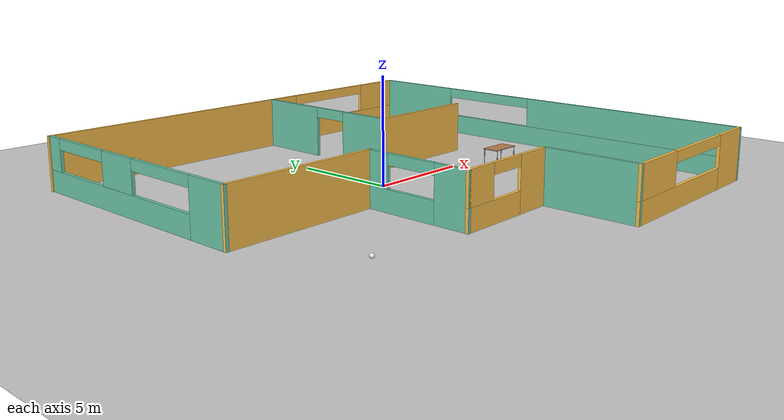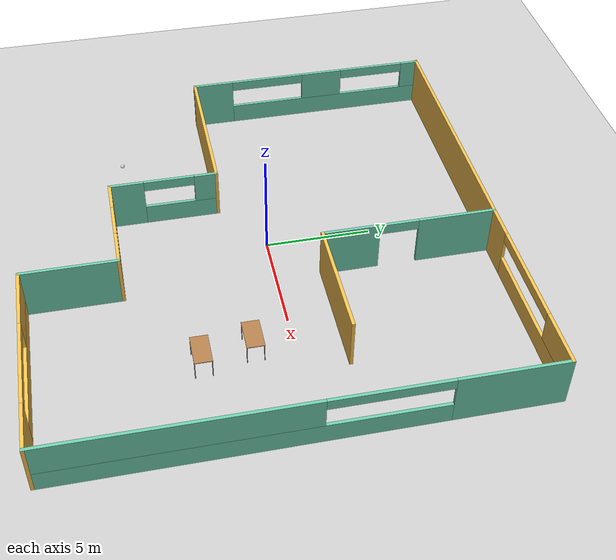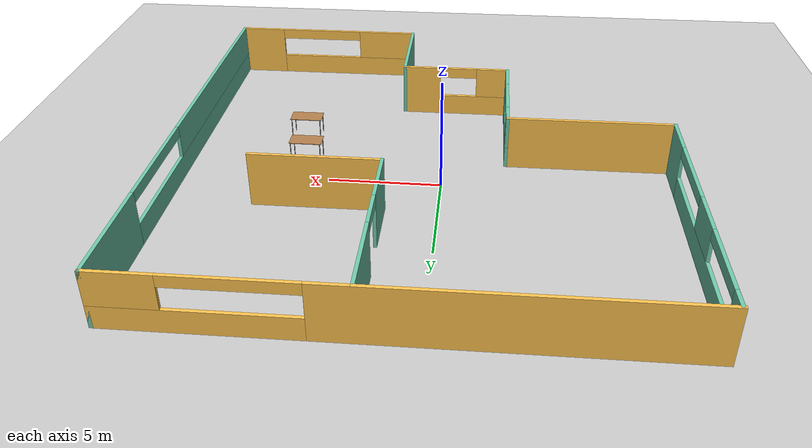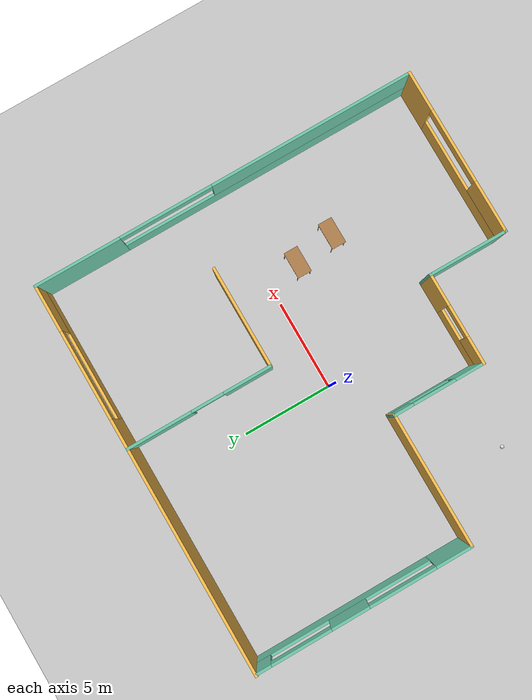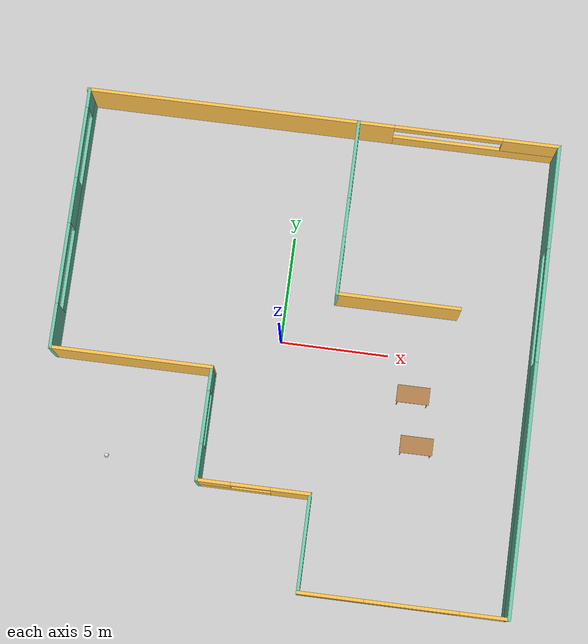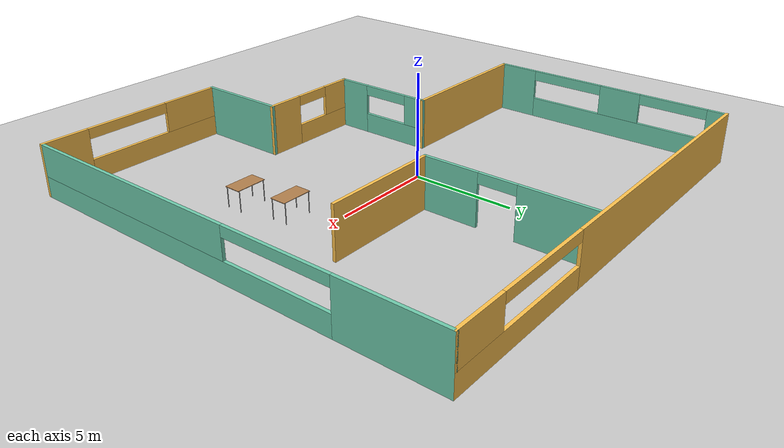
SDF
<sdf version="1.7">
 <world name="default">
  <plugin name="hello" filename="libhello.so"/>
  <light name="sun" type="directional">
   <pose>0 0 10 0 -0 0</pose>
   <diffuse>0.8 0.8 0.8 1</diffuse>
   <specular>0.2 0.2 0.2 1</specular>
   <attenuation>
    <range>1000</range>
    <constant>0.9</constant>
    <linear>0.01</linear>
    <quadratic>0.001</quadratic>
   </attenuation>
   <direction>-0.5 0.1 -0.9</direction>
   <spot><inner_angle>0</inner_angle><outer_angle>0</outer_angle><falloff>0</falloff></spot>
  </light>
  <include><uri>model://ground_plane</uri></include>
  <gravity>0 0 -9.8</gravity>
  <magnetic_field>6e-06 2.3e-05 -4.2e-05</magnetic_field>
  <atmosphere type="adiabatic"/>
  <physics type="ode">
   <max_step_size>0.001</max_step_size>
   <real_time_factor>1</real_time_factor>
   <real_time_update_rate>1000</real_time_update_rate>
  </physics>
  <scene><ambient>0.4 0.4 0.4 1</ambient><background>0.7 0.7 0.7 1</background><shadows>1</shadows></scene>
  <spherical_coordinates>
   <surface_model>EARTH_WGS84</surface_model>
   <latitude_deg>0</latitude_deg>
   <longitude_deg>0</longitude_deg>
   <elevation>0</elevation>
   <heading_deg>0</heading_deg>
  </spherical_coordinates>
  <model name="ground_floor">
   <pose>0.672639 -0.5511 0 0 -0 0</pose>
   <link name="Wall_0">
    <pose>-1e-06 10.8 0 0 -0 0</pose>
    <visual name="Wall_0_Visual_0">
     <pose>-3.85063 0 1.25 0 -0 0</pose>
     <geometry><box><size>14.2987 0.15 2.5</size></box></geometry>
     <material>
      <script><uri>file://media/materials/scripts/gazebo.material</uri><name>Gazebo/Grey</name></script>
      <ambient>1 0.764706 0.305882 1</ambient>
     </material>
     <meta><layer>0</layer></meta>
    </visual>
    <collision name="Wall_0_Collision_0">
     <geometry><box><size>14.2987 0.15 2.5</size></box></geometry>
     <pose>-3.85063 0 1.25 0 -0 0</pose>
    </collision>
    <visual name="Wall_0_Visual_1">
     <pose>7.14937 0 0.5 0 -0 0</pose>
     <geometry><box><size>7.70126 0.15 1</size></box></geometry>
     <material>
      <script><uri>file://media/materials/scripts/gazebo.material</uri><name>Gazebo/Grey</name></script>
      <ambient>1 0.764706 0.305882 1</ambient>
     </material>
     <meta><layer>0</layer></meta>
    </visual>
    <collision name="Wall_0_Collision_1">
     <geometry><box><size>7.70126 0.15 1</size></box></geometry>
     <pose>7.14937 0 0.5 0 -0 0</pose>
    </collision>
    <visual name="Wall_0_Visual_2">
     <pose>9.66137 0 1.75 0 -0 0</pose>
     <geometry><box><size>2.67726 0.15 1.5</size></box></geometry>
     <material>
      <script><uri>file://media/materials/scripts/gazebo.material</uri><name>Gazebo/Grey</name></script>
      <ambient>1 0.764706 0.305882 1</ambient>
     </material>
     <meta><layer>0</layer></meta>
    </visual>
    <collision name="Wall_0_Collision_2">
     <geometry><box><size>2.67726 0.15 1.5</size></box></geometry>
     <pose>9.66137 0 1.75 0 -0 0</pose>
    </collision>
    <visual name="Wall_0_Visual_3">
     <pose>5.81074 0 2.25 0 -0 0</pose>
     <geometry><box><size>5.024 0.15 0.5</size></box></geometry>
     <material>
      <script><uri>file://media/materials/scripts/gazebo.material</uri><name>Gazebo/Grey</name></script>
      <ambient>1 0.764706 0.305882 1</ambient>
     </material>
     <meta><layer>0</layer></meta>
    </visual>
    <collision name="Wall_0_Collision_3">
     <geometry><box><size>5.024 0.15 0.5</size></box></geometry>
     <pose>5.81074 0 2.25 0 -0 0</pose>
    </collision>
   </link>
   <link name="Wall_1">
    <pose>10.925 0 0 0 0 -1.5708</pose>
    <visual name="Wall_1_Visual_0">
     <pose>-8.42693 0 1.25 0 -0 0</pose>
     <geometry><box><size>4.89614 0.15 2.5</size></box></geometry>
     <material>
      <script><uri>file://media/materials/scripts/gazebo.material</uri><name>Gazebo/Grey</name></script>
      <ambient>0.435294 0.796078 0.67451 1</ambient>
     </material>
     <meta><layer>0</layer></meta>
    </visual>
    <collision name="Wall_1_Collision_0">
     <geometry><box><size>4.89614 0.15 2.5</size></box></geometry>
     <pose>-8.42693 0 1.25 0 -0 0</pose>
    </collision>
    <visual name="Wall_1_Visual_1">
     <pose>2.44807 0 0.5 0 -0 0</pose>
     <geometry><box><size>16.8539 0.15 1</size></box></geometry>
     <material>
      <script><uri>file://media/materials/scripts/gazebo.material</uri><name>Gazebo/Grey</name></script>
      <ambient>0.435294 0.796078 0.67451 1</ambient>
     </material>
     <meta><layer>0</layer></meta>
    </visual>
    <collision name="Wall_1_Collision_1">
     <geometry><box><size>16.8539 0.15 1</size></box></geometry>
     <pose>2.44807 0 0.5 0 -0 0</pose>
    </collision>
    <visual name="Wall_1_Visual_2">
     <pose>5.08057 0 1.75 0 -0 0</pose>
     <geometry><box><size>11.5889 0.15 1.5</size></box></geometry>
     <material>
      <script><uri>file://media/materials/scripts/gazebo.material</uri><name>Gazebo/Grey</name></script>
      <ambient>0.435294 0.796078 0.67451 1</ambient>
     </material>
     <meta><layer>0</layer></meta>
    </visual>
    <collision name="Wall_1_Collision_2">
     <geometry><box><size>11.5889 0.15 1.5</size></box></geometry>
     <pose>5.08057 0 1.75 0 -0 0</pose>
    </collision>
    <visual name="Wall_1_Visual_3">
     <pose>-3.34636 0 2.25 0 -0 0</pose>
     <geometry><box><size>5.265 0.15 0.5</size></box></geometry>
     <material>
      <script><uri>file://media/materials/scripts/gazebo.material</uri><name>Gazebo/Grey</name></script>
      <ambient>0.435294 0.796078 0.67451 1</ambient>
     </material>
     <meta><layer>0</layer></meta>
    </visual>
    <collision name="Wall_1_Collision_3">
     <geometry><box><size>5.265 0.15 0.5</size></box></geometry>
     <pose>-3.34636 0 2.25 0 -0 0</pose>
    </collision>
   </link>
   <link name="Wall_10">
    <collision name="Wall_10_Collision">
     <geometry><box><size>5.75 0.15 2.5</size></box></geometry>
     <pose>0 0 1.25 0 -0 0</pose>
    </collision>
    <visual name="Wall_10_Visual">
     <pose>0 0 1.25 0 -0 0</pose>
     <geometry><box><size>5.75 0.15 2.5</size></box></geometry>
     <material>
      <script><uri>file://media/materials/scripts/gazebo.material</uri><name>Gazebo/Grey</name></script>
      <ambient>1 0.764706 0.305882 1</ambient>
     </material>
     <meta><layer>0</layer></meta>
    </visual>
    <pose>4.43646 2.7 0 0 -0 0</pose>
   </link>
   <link name="Wall_2">
    <pose>6.25 -10.8 0 0 -0 3.14159</pose>
    <visual name="Wall_2_Visual_0">
     <pose>-3.60608 0 1.25 0 -0 0</pose>
     <geometry><box><size>2.28785 0.15 2.5</size></box></geometry>
     <material>
      <script><uri>file://media/materials/scripts/gazebo.material</uri><name>Gazebo/Grey</name></script>
      <ambient>1 0.764706 0.305882 1</ambient>
     </material>
     <meta><layer>0</layer></meta>
    </visual>
    <collision name="Wall_2_Collision_0">
     <geometry><box><size>2.28785 0.15 2.5</size></box></geometry>
     <pose>-3.60608 0 1.25 0 -0 0</pose>
    </collision>
    <visual name="Wall_2_Visual_1">
     <pose>1.14393 0 0.5 0 -0 0</pose>
     <geometry><box><size>7.21215 0.15 1</size></box></geometry>
     <material>
      <script><uri>file://media/materials/scripts/gazebo.material</uri><name>Gazebo/Grey</name></script>
      <ambient>1 0.764706 0.305882 1</ambient>
     </material>
     <meta><layer>0</layer></meta>
    </visual>
    <collision name="Wall_2_Collision_1">
     <geometry><box><size>7.21215 0.15 1</size></box></geometry>
     <pose>1.14393 0 0.5 0 -0 0</pose>
    </collision>
    <visual name="Wall_2_Visual_2">
     <pose>3.24993 0 1.75 0 -0 0</pose>
     <geometry><box><size>3.00015 0.15 1.5</size></box></geometry>
     <material>
      <script><uri>file://media/materials/scripts/gazebo.material</uri><name>Gazebo/Grey</name></script>
      <ambient>1 0.764706 0.305882 1</ambient>
     </material>
     <meta><layer>0</layer></meta>
    </visual>
    <collision name="Wall_2_Collision_2">
     <geometry><box><size>3.00015 0.15 1.5</size></box></geometry>
     <pose>3.24993 0 1.75 0 -0 0</pose>
    </collision>
    <visual name="Wall_2_Visual_3">
     <pose>-0.35615 0 2.25 0 -0 0</pose>
     <geometry><box><size>4.212 0.15 0.5</size></box></geometry>
     <material>
      <script><uri>file://media/materials/scripts/gazebo.material</uri><name>Gazebo/Grey</name></script>
      <ambient>1 0.764706 0.305882 1</ambient>
     </material>
     <meta><layer>0</layer></meta>
    </visual>
    <collision name="Wall_2_Collision_3">
     <geometry><box><size>4.212 0.15 0.5</size></box></geometry>
     <pose>-0.35615 0 2.25 0 -0 0</pose>
    </collision>
   </link>
   <link name="Wall_3">
    <collision name="Wall_3_Collision">
     <geometry><box><size>4.5 0.15 2.5</size></box></geometry>
     <pose>0 0 1.25 0 -0 0</pose>
    </collision>
    <visual name="Wall_3_Visual">
     <pose>0 0 1.25 0 -0 0</pose>
     <geometry><box><size>4.5 0.15 2.5</size></box></geometry>
     <material>
      <script><uri>file://media/materials/scripts/gazebo.material</uri><name>Gazebo/Grey</name></script>
      <ambient>0.435294 0.796078 0.67451 1</ambient>
     </material>
     <meta><layer>0</layer></meta>
    </visual>
    <pose>1.575 -8.625 0 0 -0 1.5708</pose>
   </link>
   <link name="Wall_4">
    <pose>-0.975001 -6.45 0 0 -0 3.14159</pose>
    <visual name="Wall_4_Visual_0">
     <pose>-1.69584 0 1.25 0 -0 0</pose>
     <geometry><box><size>1.85833 0.15 2.5</size></box></geometry>
     <material>
      <script><uri>file://media/materials/scripts/gazebo.material</uri><name>Gazebo/Grey</name></script>
      <ambient>1 0.764706 0.305882 1</ambient>
     </material>
     <meta><layer>0</layer></meta>
    </visual>
    <collision name="Wall_4_Collision_0">
     <geometry><box><size>1.85833 0.15 2.5</size></box></geometry>
     <pose>-1.69584 0 1.25 0 -0 0</pose>
    </collision>
    <visual name="Wall_4_Visual_1">
     <pose>0.929163 0 0.5 0 -0 0</pose>
     <geometry><box><size>3.39167 0.15 1</size></box></geometry>
     <material>
      <script><uri>file://media/materials/scripts/gazebo.material</uri><name>Gazebo/Grey</name></script>
      <ambient>1 0.764706 0.305882 1</ambient>
     </material>
     <meta><layer>0</layer></meta>
    </visual>
    <collision name="Wall_4_Collision_1">
     <geometry><box><size>3.39167 0.15 1</size></box></geometry>
     <pose>0.929163 0 0.5 0 -0 0</pose>
    </collision>
    <visual name="Wall_4_Visual_2">
     <pose>1.82916 0 1.75 0 -0 0</pose>
     <geometry><box><size>1.59167 0.15 1.5</size></box></geometry>
     <material>
      <script><uri>file://media/materials/scripts/gazebo.material</uri><name>Gazebo/Grey</name></script>
      <ambient>1 0.764706 0.305882 1</ambient>
     </material>
     <meta><layer>0</layer></meta>
    </visual>
    <collision name="Wall_4_Collision_2">
     <geometry><box><size>1.59167 0.15 1.5</size></box></geometry>
     <pose>1.82916 0 1.75 0 -0 0</pose>
    </collision>
    <visual name="Wall_4_Visual_3">
     <pose>0.133326 0 2.25 0 -0 0</pose>
     <geometry><box><size>1.8 0.15 0.5</size></box></geometry>
     <material>
      <script><uri>file://media/materials/scripts/gazebo.material</uri><name>Gazebo/Grey</name></script>
      <ambient>1 0.764706 0.305882 1</ambient>
     </material>
     <meta><layer>0</layer></meta>
    </visual>
    <collision name="Wall_4_Collision_3">
     <geometry><box><size>1.8 0.15 0.5</size></box></geometry>
     <pose>0.133326 0 2.25 0 -0 0</pose>
    </collision>
   </link>
   <link name="Wall_5">
    <pose>-3.525 -3.9 0 0 -0 1.5708</pose>
    <visual name="Wall_5_Visual_0">
     <pose>-1.78127 0 1.25 0 -0 0</pose>
     <geometry><box><size>1.68745 0.15 2.5</size></box></geometry>
     <material>
      <script><uri>file://media/materials/scripts/gazebo.material</uri><name>Gazebo/Grey</name></script>
      <ambient>0.435294 0.796078 0.67451 1</ambient>
     </material>
     <meta><layer>0</layer></meta>
    </visual>
    <collision name="Wall_5_Collision_0">
     <geometry><box><size>1.68745 0.15 2.5</size></box></geometry>
     <pose>-1.78127 0 1.25 0 -0 0</pose>
    </collision>
    <visual name="Wall_5_Visual_1">
     <pose>0.843725 0 0.5 0 -0 0</pose>
     <geometry><box><size>3.56255 0.15 1</size></box></geometry>
     <material>
      <script><uri>file://media/materials/scripts/gazebo.material</uri><name>Gazebo/Grey</name></script>
      <ambient>0.435294 0.796078 0.67451 1</ambient>
     </material>
     <meta><layer>0</layer></meta>
    </visual>
    <collision name="Wall_5_Collision_1">
     <geometry><box><size>3.56255 0.15 1</size></box></geometry>
     <pose>0.843725 0 0.5 0 -0 0</pose>
    </collision>
    <visual name="Wall_5_Visual_2">
     <pose>2.04822 0 1.75 0 -0 0</pose>
     <geometry><box><size>1.15355 0.15 1.5</size></box></geometry>
     <material>
      <script><uri>file://media/materials/scripts/gazebo.material</uri><name>Gazebo/Grey</name></script>
      <ambient>0.435294 0.796078 0.67451 1</ambient>
     </material>
     <meta><layer>0</layer></meta>
    </visual>
    <collision name="Wall_5_Collision_2">
     <geometry><box><size>1.15355 0.15 1.5</size></box></geometry>
     <pose>2.04822 0 1.75 0 -0 0</pose>
    </collision>
    <visual name="Wall_5_Visual_3">
     <pose>0.266949 0 2.25 0 -0 0</pose>
     <geometry><box><size>2.409 0.15 0.5</size></box></geometry>
     <material>
      <script><uri>file://media/materials/scripts/gazebo.material</uri><name>Gazebo/Grey</name></script>
      <ambient>0.435294 0.796078 0.67451 1</ambient>
     </material>
     <meta><layer>0</layer></meta>
    </visual>
    <collision name="Wall_5_Collision_3">
     <geometry><box><size>2.409 0.15 0.5</size></box></geometry>
     <pose>0.266949 0 2.25 0 -0 0</pose>
    </collision>
   </link>
   <link name="Wall_6">
    <collision name="Wall_6_Collision">
     <geometry><box><size>7.5 0.15 2.5</size></box></geometry>
     <pose>0 0 1.25 0 -0 0</pose>
    </collision>
    <visual name="Wall_6_Visual">
     <pose>0 0 1.25 0 -0 0</pose>
     <geometry><box><size>7.5 0.15 2.5</size></box></geometry>
     <material>
      <script><uri>file://media/materials/scripts/gazebo.material</uri><name>Gazebo/Grey</name></script>
      <ambient>1 0.764706 0.305882 1</ambient>
     </material>
     <meta><layer>0</layer></meta>
    </visual>
    <pose>-7.2 -1.35 0 0 -0 3.14159</pose>
   </link>
   <link name="Wall_7">
    <pose>-10.875 4.7 0 0 -0 1.5708</pose>
    <visual name="Wall_7_Visual_0">
     <pose>-5.08309 0 1.25 0 -0 0</pose>
     <geometry><box><size>2.08381 0.15 2.5</size></box></geometry>
     <material>
      <script><uri>file://media/materials/scripts/gazebo.material</uri><name>Gazebo/Grey</name></script>
      <ambient>0.435294 0.796078 0.67451 1</ambient>
     </material>
     <meta><layer>0</layer></meta>
    </visual>
    <collision name="Wall_7_Collision_0">
     <geometry><box><size>2.08381 0.15 2.5</size></box></geometry>
     <pose>-5.08309 0 1.25 0 -0 0</pose>
    </collision>
    <visual name="Wall_7_Visual_1">
     <pose>1.04191 0 0.5 0 -0 0</pose>
     <geometry><box><size>10.1662 0.15 1</size></box></geometry>
     <material>
      <script><uri>file://media/materials/scripts/gazebo.material</uri><name>Gazebo/Grey</name></script>
      <ambient>0.435294 0.796078 0.67451 1</ambient>
     </material>
     <meta><layer>0</layer></meta>
    </visual>
    <collision name="Wall_7_Collision_1">
     <geometry><box><size>10.1662 0.15 1</size></box></geometry>
     <pose>1.04191 0 0.5 0 -0 0</pose>
    </collision>
    <visual name="Wall_7_Visual_2">
     <pose>0.7888 0 1.75 0 -0 0</pose>
     <geometry><box><size>2.13598 0.15 1.5</size></box></geometry>
     <material>
      <script><uri>file://media/materials/scripts/gazebo.material</uri><name>Gazebo/Grey</name></script>
      <ambient>0.435294 0.796078 0.67451 1</ambient>
     </material>
     <meta><layer>0</layer></meta>
    </visual>
    <collision name="Wall_7_Collision_2">
     <geometry><box><size>2.13598 0.15 1.5</size></box></geometry>
     <pose>0.7888 0 1.75 0 -0 0</pose>
    </collision>
    <visual name="Wall_7_Visual_3">
     <pose>5.67389 0 1.75 0 -0 0</pose>
     <geometry><box><size>0.902212 0.15 1.5</size></box></geometry>
     <material>
      <script><uri>file://media/materials/scripts/gazebo.material</uri><name>Gazebo/Grey</name></script>
      <ambient>0.435294 0.796078 0.67451 1</ambient>
     </material>
     <meta><layer>0</layer></meta>
    </visual>
    <collision name="Wall_7_Collision_3">
     <geometry><box><size>0.902212 0.15 1.5</size></box></geometry>
     <pose>5.67389 0 1.75 0 -0 0</pose>
    </collision>
    <visual name="Wall_7_Visual_4">
     <pose>-2.16019 0 2.25 0 -0 0</pose>
     <geometry><box><size>3.762 0.15 0.5</size></box></geometry>
     <material>
      <script><uri>file://media/materials/scripts/gazebo.material</uri><name>Gazebo/Grey</name></script>
      <ambient>0.435294 0.796078 0.67451 1</ambient>
     </material>
     <meta><layer>0</layer></meta>
    </visual>
    <collision name="Wall_7_Collision_4">
     <geometry><box><size>3.762 0.15 0.5</size></box></geometry>
     <pose>-2.16019 0 2.25 0 -0 0</pose>
    </collision>
    <visual name="Wall_7_Visual_5">
     <pose>3.53979 0 2.25 0 -0 0</pose>
     <geometry><box><size>3.366 0.15 0.5</size></box></geometry>
     <material>
      <script><uri>file://media/materials/scripts/gazebo.material</uri><name>Gazebo/Grey</name></script>
      <ambient>0.435294 0.796078 0.67451 1</ambient>
     </material>
     <meta><layer>0</layer></meta>
    </visual>
    <collision name="Wall_7_Collision_5">
     <geometry><box><size>3.366 0.15 0.5</size></box></geometry>
     <pose>3.53979 0 2.25 0 -0 0</pose>
    </collision>
   </link>
   <link name="Wall_9">
    <pose>1.63646 6.75 0 0 0 -1.5708</pose>
    <visual name="Wall_9_Visual_0">
     <pose>-2.28522 0 1.25 0 -0 0</pose>
     <geometry><box><size>3.67956 0.15 2.5</size></box></geometry>
     <material>
      <script><uri>file://media/materials/scripts/gazebo.material</uri><name>Gazebo/Grey</name></script>
      <ambient>0.435294 0.796078 0.67451 1</ambient>
     </material>
     <meta><layer>0</layer></meta>
    </visual>
    <collision name="Wall_9_Collision_0">
     <geometry><box><size>3.67956 0.15 2.5</size></box></geometry>
     <pose>-2.28522 0 1.25 0 -0 0</pose>
    </collision>
    <visual name="Wall_9_Visual_1">
     <pose>2.75228 0 1.25 0 -0 0</pose>
     <geometry><box><size>2.74544 0.15 2.5</size></box></geometry>
     <material>
      <script><uri>file://media/materials/scripts/gazebo.material</uri><name>Gazebo/Grey</name></script>
      <ambient>0.435294 0.796078 0.67451 1</ambient>
     </material>
     <meta><layer>0</layer></meta>
    </visual>
    <collision name="Wall_9_Collision_1">
     <geometry><box><size>2.74544 0.15 2.5</size></box></geometry>
     <pose>2.75228 0 1.25 0 -0 0</pose>
    </collision>
    <visual name="Wall_9_Visual_2">
     <pose>0.46706 0 2.25 0 -0 0</pose>
     <geometry><box><size>1.825 0.15 0.5</size></box></geometry>
     <material>
      <script><uri>file://media/materials/scripts/gazebo.material</uri><name>Gazebo/Grey</name></script>
      <ambient>0.435294 0.796078 0.67451 1</ambient>
     </material>
     <meta><layer>0</layer></meta>
    </visual>
    <collision name="Wall_9_Collision_2">
     <geometry><box><size>1.825 0.15 0.5</size></box></geometry>
     <pose>0.46706 0 2.25 0 -0 0</pose>
    </collision>
   </link>
   <static>1</static>
  </model>
  <model name="table">
   <static>1</static>
   <link name="link">
    <collision name="surface">
     <pose>0 0 1 0 -0 0</pose>
     <geometry><box><size>1.5 0.8 0.03</size></box></geometry>
     <surface><friction><ode><mu>0.6</mu><mu2>0.6</mu2></ode></friction></surface>
    </collision>
    <visual name="visual1">
     <pose>0 0 1 0 -0 0</pose>
     <geometry><box><size>1.5 0.8 0.03</size></box></geometry>
     <material>
      <script><uri>file://media/materials/scripts/gazebo.material</uri><name>Gazebo/Wood</name></script>
     </material>
    </visual>
    <collision name="front_left_leg">
     <pose>0.68 0.38 0.5 0 -0 0</pose>
     <geometry><cylinder><radius>0.02</radius><length>1</length></cylinder></geometry>
    </collision>
    <visual name="front_left_leg">
     <pose>0.68 0.38 0.5 0 -0 0</pose>
     <geometry><cylinder><radius>0.02</radius><length>1</length></cylinder></geometry>
     <material>
      <script><uri>file://media/materials/scripts/gazebo.material</uri><name>Gazebo/Grey</name></script>
     </material>
    </visual>
    <collision name="front_right_leg">
     <pose>0.68 -0.38 0.5 0 -0 0</pose>
     <geometry><cylinder><radius>0.02</radius><length>1</length></cylinder></geometry>
    </collision>
    <visual name="front_right_leg">
     <pose>0.68 -0.38 0.5 0 -0 0</pose>
     <geometry><cylinder><radius>0.02</radius><length>1</length></cylinder></geometry>
     <material>
      <script><uri>file://media/materials/scripts/gazebo.material</uri><name>Gazebo/Grey</name></script>
     </material>
    </visual>
    <collision name="back_right_leg">
     <pose>-0.68 -0.38 0.5 0 -0 0</pose>
     <geometry><cylinder><radius>0.02</radius><length>1</length></cylinder></geometry>
    </collision>
    <visual name="back_right_leg">
     <pose>-0.68 -0.38 0.5 0 -0 0</pose>
     <geometry><cylinder><radius>0.02</radius><length>1</length></cylinder></geometry>
     <material>
      <script><uri>file://media/materials/scripts/gazebo.material</uri><name>Gazebo/Grey</name></script>
     </material>
    </visual>
    <collision name="back_left_leg">
     <pose>-0.68 0.38 0.5 0 -0 0</pose>
     <geometry><cylinder><radius>0.02</radius><length>1</length></cylinder></geometry>
    </collision>
    <visual name="back_left_leg">
     <pose>-0.68 0.38 0.5 0 -0 0</pose>
     <geometry><cylinder><radius>0.02</radius><length>1</length></cylinder></geometry>
     <material>
      <script><uri>file://media/materials/scripts/gazebo.material</uri><name>Gazebo/Grey</name></script>
     </material>
    </visual>
   </link>
   <pose>6.33702 -1.79559 0 0 -0 0</pose>
  </model>
  <model name="table_0">
   <static>1</static>
   <link name="link">
    <collision name="surface">
     <pose>0 0 1 0 -0 0</pose>
     <geometry><box><size>1.5 0.8 0.03</size></box></geometry>
     <surface><friction><ode><mu>0.6</mu><mu2>0.6</mu2></ode></friction></surface>
    </collision>
    <visual name="visual1">
     <pose>0 0 1 0 -0 0</pose>
     <geometry><box><size>1.5 0.8 0.03</size></box></geometry>
     <material>
      <script><uri>file://media/materials/scripts/gazebo.material</uri><name>Gazebo/Wood</name></script>
     </material>
    </visual>
    <collision name="front_left_leg">
     <pose>0.68 0.38 0.5 0 -0 0</pose>
     <geometry><cylinder><radius>0.02</radius><length>1</length></cylinder></geometry>
    </collision>
    <visual name="front_left_leg">
     <pose>0.68 0.38 0.5 0 -0 0</pose>
     <geometry><cylinder><radius>0.02</radius><length>1</length></cylinder></geometry>
     <material>
      <script><uri>file://media/materials/scripts/gazebo.material</uri><name>Gazebo/Grey</name></script>
     </material>
    </visual>
    <collision name="front_right_leg">
     <pose>0.68 -0.38 0.5 0 -0 0</pose>
     <geometry><cylinder><radius>0.02</radius><length>1</length></cylinder></geometry>
    </collision>
    <visual name="front_right_leg">
     <pose>0.68 -0.38 0.5 0 -0 0</pose>
     <geometry><cylinder><radius>0.02</radius><length>1</length></cylinder></geometry>
     <material>
      <script><uri>file://media/materials/scripts/gazebo.material</uri><name>Gazebo/Grey</name></script>
     </material>
    </visual>
    <collision name="back_right_leg">
     <pose>-0.68 -0.38 0.5 0 -0 0</pose>
     <geometry><cylinder><radius>0.02</radius><length>1</length></cylinder></geometry>
    </collision>
    <visual name="back_right_leg">
     <pose>-0.68 -0.38 0.5 0 -0 0</pose>
     <geometry><cylinder><radius>0.02</radius><length>1</length></cylinder></geometry>
     <material>
      <script><uri>file://media/materials/scripts/gazebo.material</uri><name>Gazebo/Grey</name></script>
     </material>
    </visual>
    <collision name="back_left_leg">
     <pose>-0.68 0.38 0.5 0 -0 0</pose>
     <geometry><cylinder><radius>0.02</radius><length>1</length></cylinder></geometry>
    </collision>
    <visual name="back_left_leg">
     <pose>-0.68 0.38 0.5 0 -0 0</pose>
     <geometry><cylinder><radius>0.02</radius><length>1</length></cylinder></geometry>
     <material>
      <script><uri>file://media/materials/scripts/gazebo.material</uri><name>Gazebo/Grey</name></script>
     </material>
    </visual>
   </link>
   <pose>6.75452 -4.08995 0 0 -0 0</pose>
  </model>
  <model name="my_ball">
   <link name="link_0">
    <inertial>
     <mass>1</mass>
     <inertia><ixx>0.1</ixx><ixy>0</ixy><ixz>0</ixz><iyy>0.1</iyy><iyz>0</iyz><izz>0.1</izz></inertia>
    </inertial>
    <visual name="visual">
     <geometry><sphere><radius>0.1</radius></sphere></geometry>
     <material>
      <lighting>1</lighting>
      <script><uri>file://media/materials/scripts/gazebo.material</uri><name>Gazebo/White</name></script>
      <shader type="pixel"><normal_map>__default__</normal_map></shader>
      <ambient>1 1 1 1</ambient>
      <diffuse>1 1 1 1</diffuse>
      <specular>1 1 1 1</specular>
      <emissive>1 1 1 1</emissive>
     </material>
    </visual>
    <collision name="collision">
     <geometry><sphere><radius>0.1</radius></sphere></geometry>
     <surface>
      <friction>
       <ode><mu>1</mu><mu2>1</mu2><fdir1>0 0 0</fdir1><slip1>0</slip1><slip2>0</slip2></ode>
       <torsional>
        <coefficient>1</coefficient>
        <patch_radius>0</patch_radius>
        <surface_radius>0</surface_radius>
        <use_patch_radius>1</use_patch_radius>
        <ode><slip>0</slip></ode>
       </torsional>
      </friction>
      <bounce><restitution_coefficient>0</restitution_coefficient><threshold>1e+06</threshold></bounce>
      <contact>
       <collide_without_contact>0</collide_without_contact>
       <collide_without_contact_bitmask>1</collide_without_contact_bitmask>
       <collide_bitmask>1</collide_bitmask>
       <ode>
        <soft_cfm>0</soft_cfm>
        <soft_erp>0.2</soft_erp>
        <kp>1e+13</kp>
        <kd>1</kd>
        <max_vel>0.01</max_vel>
        <min_depth>0</min_depth>
       </ode>
       <bullet>
        <split_impulse>1</split_impulse>
        <split_impulse_penetration_threshold>-0.01</split_impulse_penetration_threshold>
        <soft_cfm>0</soft_cfm>
        <soft_erp>0.2</soft_erp>
        <kp>1e+13</kp>
        <kd>1</kd>
       </bullet>
      </contact>
     </surface>
    </collision>
   </link>
   <static>0</static>
   <pose>-7.2645 -6.22555 0.1 0 -0 0</pose>
  </model>
 </world>
</sdf>
